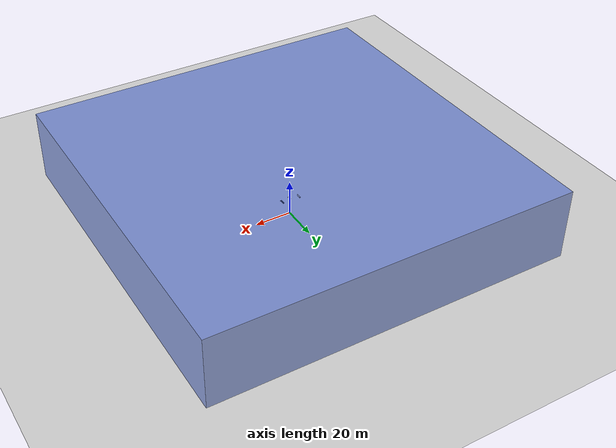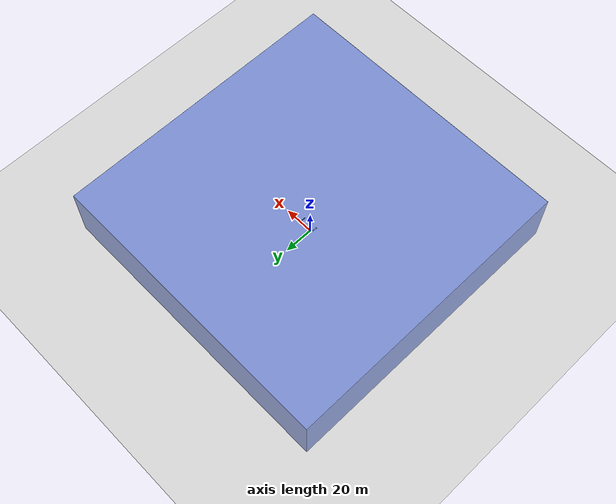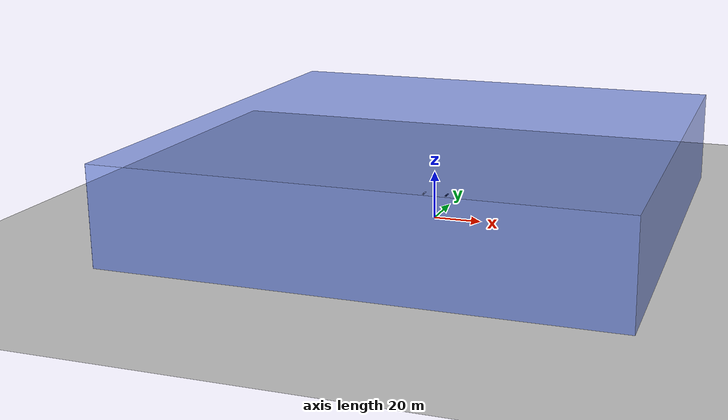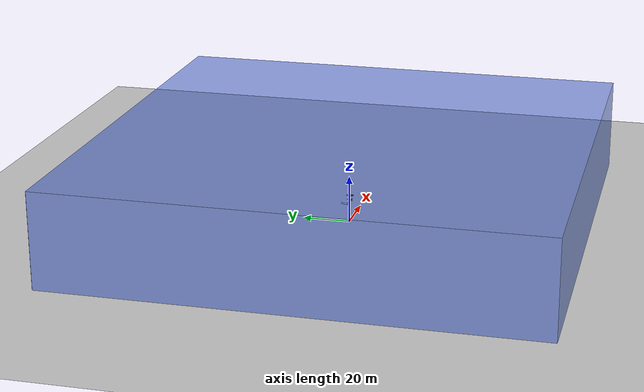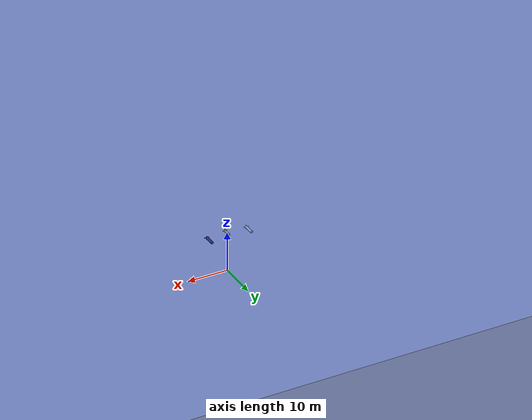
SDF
<sdf version="1.7">
 <world name="default">
  <scene>
   <ambient>0.25 0.3 0.5 1</ambient>
   <grid>0</grid>
   <background>0.7 0.7 0.7 1</background>
   <shadows>1</shadows>
  </scene>
  <light name="sun" type="directional">
   <pose>0 0 100 0 -0 0</pose>
   <diffuse>0.8 0.8 0.8 1</diffuse>
   <specular>0.2 0.2 0.2 1</specular>
   <attenuation>
    <range>1000</range>
    <constant>0.9</constant>
    <linear>0.01</linear>
    <quadratic>0.001</quadratic>
   </attenuation>
   <direction>-0.5 0.1 -0.9</direction>
   <spot><inner_angle>0</inner_angle><outer_angle>0</outer_angle><falloff>0</falloff></spot>
  </light>
  <model name="ground_plane">
   <static>1</static>
   <link name="link">
    <collision name="collision">
     <geometry><plane><normal>0 0 1</normal><size>200 200</size></plane></geometry>
     <surface>
      <contact><collide_bitmask>65535</collide_bitmask></contact>
      <friction><ode><mu>100</mu><mu2>50</mu2></ode></friction>
     </surface>
    </collision>
    <visual name="visual">
     <cast_shadows>0</cast_shadows>
     <geometry><plane><normal>0 0 1</normal><size>200 200</size></plane></geometry>
     <material>
      <script><uri>file://media/materials/scripts/gazebo.material</uri><name>Gazebo/Grey</name></script>
     </material>
    </visual>
   </link>
  </model>
  <model name="submarine_sinking">
   <pose>5 0 10 1.57 -0 0</pose>
   <link name="body">
    <pose>0 0 -1.07935 0 -0 0</pose>
    <inertial>
     <mass>1102.7</mass>
     <inertia><ixx>645.998</ixx><ixy>0</ixy><ixz>0</ixz><iyy>645.998</iyy><iyz>0</iyz><izz>49.6215</izz></inertia>
    </inertial>
    <visual name="body_visual">
     <geometry><cylinder><radius>0.3</radius><length>2.6</length></cylinder></geometry>
     <material>
      <script><uri>file://media/materials/scripts/gazebo.material</uri><name>Gazebo/Black</name></script>
     </material>
    </visual>
    <collision name="body_collision">
     <geometry><cylinder><radius>0.3</radius><length>2.6</length></cylinder></geometry>
    </collision>
    <visual name="spacer_visual">
     <pose>0 0 1.37855 0 -0 0</pose>
     <geometry><cylinder><radius>0.0933402</radius><length>0.127211</length></cylinder></geometry>
     <material>
      <script><uri>file://media/materials/scripts/gazebo.material</uri><name>Gazebo/Black</name></script>
     </material>
    </visual>
   </link>
   <link name="propeller">
    <pose>0 0 0.3455 3.14159 -0 0</pose>
    <inertial>
     <mass>25.2312</mass>
     <inertia><ixx>0.531907</ixx><ixy>0</ixy><ixz>0</ixz><iyy>0.531907</iyy><iyz>0</iyz><izz>1.0513</izz></inertia>
    </inertial>
    <visual name="blade1_visual">
     <pose>0.34334 0 0 0.785398 -0 0</pose>
     <geometry><box><size>0.5 0.154178 0.05455</size></box></geometry>
     <material>
      <script><uri>file://media/materials/scripts/gazebo.material</uri><name>Gazebo/Black</name></script>
     </material>
    </visual>
    <collision name="blade1_collision">
     <pose>0.34334 0 0 0.785398 -0 0</pose>
     <geometry><box><size>0.5 0.154178 0.05455</size></box></geometry>
    </collision>
    <visual name="blade2_visual">
     <pose>0 0.34334 0 0.785398 0 1.5708</pose>
     <geometry><box><size>0.5 0.154178 0.05455</size></box></geometry>
     <material>
      <script><uri>file://media/materials/scripts/gazebo.material</uri><name>Gazebo/Black</name></script>
     </material>
    </visual>
    <collision name="blade2_collision">
     <pose>0 0.34334 0 0.785398 0 1.5708</pose>
     <geometry><box><size>0.5 0.154178 0.05455</size></box></geometry>
    </collision>
    <visual name="blade3_visual">
     <pose>-0.34334 -0 0 -0.785398 0 0</pose>
     <geometry><box><size>0.5 0.154178 0.05455</size></box></geometry>
     <material>
      <script><uri>file://media/materials/scripts/gazebo.material</uri><name>Gazebo/Black</name></script>
     </material>
    </visual>
    <collision name="blade3_collision">
     <pose>-0.34334 -0 0 -0.785398 0 0</pose>
     <geometry><box><size>0.5 0.154178 0.05455</size></box></geometry>
    </collision>
    <visual name="blade4_visual">
     <pose>-0 -0.34334 0 -0.785398 -0 1.5708</pose>
     <geometry><box><size>0.5 0.154178 0.05455</size></box></geometry>
     <material>
      <script><uri>file://media/materials/scripts/gazebo.material</uri><name>Gazebo/Black</name></script>
     </material>
    </visual>
    <collision name="blade4_collision">
     <pose>-0 -0.34334 0 -0.785398 -0 1.5708</pose>
     <geometry><box><size>0.5 0.154178 0.05455</size></box></geometry>
    </collision>
   </link>
   <joint name="spinning_joint" type="revolute">
    <parent>body</parent>
    <child>propeller</child>
    <axis>
     <xyz expressed_in="__model__">0 0 1</xyz>
     <limit><lower>-1e+12</lower><upper>1e+12</upper><effort>-1</effort><velocity>-1</velocity></limit>
     <dynamics><spring_reference>0</spring_reference><spring_stiffness>0</spring_stiffness></dynamics>
    </axis>
   </joint>
   <plugin name="buoyancy" filename="libBuoyancyPlugin.so"><fluid_density>999.1026</fluid_density></plugin>
  </model>
  <model name="submarine">
   <pose>0 0 10 1.57 -0 0</pose>
   <link name="body">
    <inertial>
     <mass>251.327</mass>
     <inertia><ixx>86.2891</ixx><ixy>0</ixy><ixz>0</ixz><iyy>86.2891</iyy><iyz>0</iyz><izz>5.02655</izz></inertia>
    </inertial>
    <visual name="body_visual">
     <geometry><cylinder><radius>0.2</radius><length>2</length></cylinder></geometry>
     <material>
      <script><uri>file://media/materials/scripts/gazebo.material</uri><name>Gazebo/Yellow</name></script>
     </material>
    </visual>
    <collision name="body_collision">
     <geometry><cylinder><radius>0.2</radius><length>2</length></cylinder></geometry>
    </collision>
    <visual name="spacer_visual">
     <pose>0 0 1.05855 0 -0 0</pose>
     <geometry><cylinder><radius>0.0933402</radius><length>0.127211</length></cylinder></geometry>
     <material>
      <script><uri>file://media/materials/scripts/gazebo.material</uri><name>Gazebo/Yellow</name></script>
     </material>
    </visual>
    <enable_wind>1</enable_wind>
   </link>
   <link name="propeller">
    <pose>0 0 1.09 3.14159 -0 0</pose>
    <inertial>
     <mass>21.82</mass>
     <inertia>
      <ixx>0.459994</ixx>
      <ixy>0</ixy>
      <ixz>0</ixz>
      <iyy>0.459994</iyy>
      <iyz>0</iyz>
      <izz>0.909167</izz>
     </inertia>
    </inertial>
    <visual name="blade1_visual">
     <pose>0.34334 0 0 0.785398 -0 0</pose>
     <geometry><box><size>0.5 0.2 0.05455</size></box></geometry>
     <material>
      <script><uri>file://media/materials/scripts/gazebo.material</uri><name>Gazebo/Yellow</name></script>
     </material>
    </visual>
    <collision name="blade1_collision">
     <pose>0.34334 0 0 0.785398 -0 0</pose>
     <geometry><box><size>0.5 0.2 0.05455</size></box></geometry>
    </collision>
    <visual name="blade2_visual">
     <pose>0 0.34334 0 0.785398 0 1.5708</pose>
     <geometry><box><size>0.5 0.2 0.05455</size></box></geometry>
     <material>
      <script><uri>file://media/materials/scripts/gazebo.material</uri><name>Gazebo/Yellow</name></script>
     </material>
    </visual>
    <collision name="blade2_collision">
     <pose>0 0.34334 0 0.785398 0 1.5708</pose>
     <geometry><box><size>0.5 0.2 0.05455</size></box></geometry>
    </collision>
    <visual name="blade3_visual">
     <pose>-0.34334 -0 0 -0.785398 0 0</pose>
     <geometry><box><size>0.5 0.2 0.05455</size></box></geometry>
     <material>
      <script><uri>file://media/materials/scripts/gazebo.material</uri><name>Gazebo/Yellow</name></script>
     </material>
    </visual>
    <collision name="blade3_collision">
     <pose>-0.34334 -0 0 -0.785398 0 0</pose>
     <geometry><box><size>0.5 0.2 0.05455</size></box></geometry>
    </collision>
    <visual name="blade4_visual">
     <pose>-0 -0.34334 0 -0.785398 -0 1.5708</pose>
     <geometry><box><size>0.5 0.2 0.05455</size></box></geometry>
     <material>
      <script><uri>file://media/materials/scripts/gazebo.material</uri><name>Gazebo/Yellow</name></script>
     </material>
    </visual>
    <collision name="blade4_collision">
     <pose>-0 -0.34334 0 -0.785398 -0 1.5708</pose>
     <geometry><box><size>0.5 0.2 0.05455</size></box></geometry>
    </collision>
    <enable_wind>1</enable_wind>
   </link>
   <joint name="spinning_joint" type="revolute">
    <parent>body</parent>
    <child>propeller</child>
    <axis>
     <xyz expressed_in="__model__">0 0 1</xyz>
     <limit><lower>-1e+12</lower><upper>1e+12</upper><effort>-1</effort><velocity>-1</velocity></limit>
     <dynamics><spring_reference>0</spring_reference><spring_stiffness>0</spring_stiffness></dynamics>
    </axis>
   </joint>
   <plugin name="submarine_propeller_1" filename="libLiftDragPlugin.so">
    <air_density>1000</air_density>
    <cla>1.2535816618911175</cla>
    <cla_stall>-1.4326647564469914</cla_stall>
    <cda>0</cda>
    <cda_stall>1.4326647564469914</cda_stall>
    <alpha_stall>1.396</alpha_stall>
    <a0>0</a0>
    <area>0.27637</area>
    <upward>0 -0.7071067811865476 -0.7071067811865475</upward>
    <forward>0 -0.7071067811865475 0.7071067811865476</forward>
    <link_name>propeller</link_name>
    <cp>0.35 0 0</cp>
   </plugin>
   <plugin name="submarine_propeller_2" filename="libLiftDragPlugin.so">
    <air_density>1000</air_density>
    <cla>1.2535816618911175</cla>
    <cla_stall>-1.4326647564469914</cla_stall>
    <cda>0</cda>
    <cda_stall>1.4326647564469914</cda_stall>
    <alpha_stall>1.396</alpha_stall>
    <a0>0</a0>
    <area>0.27637</area>
    <upward>-0.7071067811865475 0 -0.7071067811865476</upward>
    <forward>-0.7071067811865476 0 0.7071067811865475</forward>
    <link_name>propeller</link_name>
    <cp>0 -0.35 0</cp>
   </plugin>
   <plugin name="submarine_propeller_3" filename="libLiftDragPlugin.so">
    <air_density>1000</air_density>
    <cla>1.2535816618911175</cla>
    <cla_stall>-1.4326647564469914</cla_stall>
    <cda>0</cda>
    <cda_stall>1.4326647564469914</cda_stall>
    <alpha_stall>1.396</alpha_stall>
    <a0>0</a0>
    <area>0.27637</area>
    <upward>0 0.7071067811865475 -0.7071067811865476</upward>
    <forward>0 -0.7071067811865476 -0.7071067811865475</forward>
    <link_name>propeller</link_name>
    <cp>-0.35 0 0</cp>
   </plugin>
   <plugin name="submarine_propeller_4" filename="libLiftDragPlugin.so">
    <air_density>1000</air_density>
    <cla>1.2535816618911175</cla>
    <cla_stall>-1.4326647564469914</cla_stall>
    <cda>0</cda>
    <cda_stall>1.4326647564469914</cda_stall>
    <alpha_stall>1.396</alpha_stall>
    <a0>0</a0>
    <area>0.27637</area>
    <upward>0.7071067811865476 0 -0.7071067811865475</upward>
    <forward>0.7071067811865475 0 0.7071067811865476</forward>
    <link_name>propeller</link_name>
    <cp>0 0.35 0</cp>
   </plugin>
   <plugin name="buoyancy" filename="libBuoyancyPlugin.so"><fluid_density>1000</fluid_density></plugin>
   <enable_wind>1</enable_wind>
  </model>
  <model name="submarine_buoyant">
   <pose>-5 0 10 1.57 -0 0</pose>
   <link name="body">
    <pose>0 0 -1.07935 0 -0 0</pose>
    <inertial>
     <mass>367.566</mass>
     <inertia><ixx>215.333</ixx><ixy>0</ixy><ixz>0</ixz><iyy>215.333</iyy><iyz>0</iyz><izz>16.5405</izz></inertia>
    </inertial>
    <visual name="body_visual">
     <geometry><cylinder><radius>0.3</radius><length>2.6</length></cylinder></geometry>
     <material>
      <script><uri>file://media/materials/scripts/gazebo.material</uri><name>Gazebo/White</name></script>
     </material>
    </visual>
    <collision name="body_collision">
     <geometry><cylinder><radius>0.3</radius><length>2.6</length></cylinder></geometry>
    </collision>
    <visual name="spacer_visual">
     <pose>0 0 1.37855 0 -0 0</pose>
     <geometry><cylinder><radius>0.0933402</radius><length>0.127211</length></cylinder></geometry>
     <material>
      <script><uri>file://media/materials/scripts/gazebo.material</uri><name>Gazebo/White</name></script>
     </material>
    </visual>
   </link>
   <link name="propeller">
    <pose>0 0 0.3455 3.14159 -0 0</pose>
    <inertial>
     <mass>8.41041</mass>
     <inertia>
      <ixx>0.177302</ixx>
      <ixy>0</ixy>
      <ixz>0</ixz>
      <iyy>0.177302</iyy>
      <iyz>0</iyz>
      <izz>0.350434</izz>
     </inertia>
    </inertial>
    <visual name="blade1_visual">
     <pose>0.34334 0 0 0.785398 -0 0</pose>
     <geometry><box><size>0.5 0.154178 0.05455</size></box></geometry>
     <material>
      <script><uri>file://media/materials/scripts/gazebo.material</uri><name>Gazebo/White</name></script>
     </material>
    </visual>
    <collision name="blade1_collision">
     <pose>0.34334 0 0 0.785398 -0 0</pose>
     <geometry><box><size>0.5 0.154178 0.05455</size></box></geometry>
    </collision>
    <visual name="blade2_visual">
     <pose>0 0.34334 0 0.785398 0 1.5708</pose>
     <geometry><box><size>0.5 0.154178 0.05455</size></box></geometry>
     <material>
      <script><uri>file://media/materials/scripts/gazebo.material</uri><name>Gazebo/White</name></script>
     </material>
    </visual>
    <collision name="blade2_collision">
     <pose>0 0.34334 0 0.785398 0 1.5708</pose>
     <geometry><box><size>0.5 0.154178 0.05455</size></box></geometry>
    </collision>
    <visual name="blade3_visual">
     <pose>-0.34334 -0 0 -0.785398 0 0</pose>
     <geometry><box><size>0.5 0.154178 0.05455</size></box></geometry>
     <material>
      <script><uri>file://media/materials/scripts/gazebo.material</uri><name>Gazebo/White</name></script>
     </material>
    </visual>
    <collision name="blade3_collision">
     <pose>-0.34334 -0 0 -0.785398 0 0</pose>
     <geometry><box><size>0.5 0.154178 0.05455</size></box></geometry>
    </collision>
    <visual name="blade4_visual">
     <pose>-0 -0.34334 0 -0.785398 -0 1.5708</pose>
     <geometry><box><size>0.5 0.154178 0.05455</size></box></geometry>
     <material>
      <script><uri>file://media/materials/scripts/gazebo.material</uri><name>Gazebo/White</name></script>
     </material>
    </visual>
    <collision name="blade4_collision">
     <pose>-0 -0.34334 0 -0.785398 -0 1.5708</pose>
     <geometry><box><size>0.5 0.154178 0.05455</size></box></geometry>
    </collision>
   </link>
   <joint name="spinning_joint" type="revolute">
    <parent>body</parent>
    <child>propeller</child>
    <axis>
     <xyz expressed_in="__model__">0 0 1</xyz>
     <limit><lower>-1e+12</lower><upper>1e+12</upper><effort>-1</effort><velocity>-1</velocity></limit>
     <dynamics><spring_reference>0</spring_reference><spring_stiffness>0</spring_stiffness></dynamics>
    </axis>
   </joint>
   <plugin name="buoyancy" filename="libBuoyancyPlugin.so"><fluid_density>999.1026</fluid_density></plugin>
  </model>
  <model name="ceiling_plane">
   <static>1</static>
   <pose>0 0 40 0 -0 0</pose>
   <link name="link">
    <collision name="collision"><geometry><box><size>200 200 0.1</size></box></geometry></collision>
    <visual name="visual">
     <cast_shadows>0</cast_shadows>
     <geometry><box><size>200 200 0.1</size></box></geometry>
     <material>
      <script><uri>file://media/materials/scripts/gazebo.material</uri><name>Gazebo/BlueTransparent</name></script>
     </material>
    </visual>
    <visual name="visual_sideA">
     <pose>100.05 0 -20 0 -0 0</pose>
     <cast_shadows>0</cast_shadows>
     <geometry><box><size>0.1 200 39.9</size></box></geometry>
     <material>
      <script><uri>file://media/materials/scripts/gazebo.material</uri><name>Gazebo/BlueTransparent</name></script>
     </material>
    </visual>
    <visual name="visual_sideB">
     <pose>-100.05 0 -20 0 -0 0</pose>
     <cast_shadows>0</cast_shadows>
     <geometry><box><size>0.1 200 39.9</size></box></geometry>
     <material>
      <script><uri>file://media/materials/scripts/gazebo.material</uri><name>Gazebo/BlueTransparent</name></script>
     </material>
    </visual>
    <visual name="visual_sideC">
     <pose>0 100.05 -20 0 -0 0</pose>
     <cast_shadows>0</cast_shadows>
     <geometry><box><size>200 0.1 39.9</size></box></geometry>
     <material>
      <script><uri>file://media/materials/scripts/gazebo.material</uri><name>Gazebo/BlueTransparent</name></script>
     </material>
    </visual>
    <visual name="visual_sideD">
     <pose>0 -100.05 -20 0 -0 0</pose>
     <cast_shadows>0</cast_shadows>
     <geometry><box><size>200 0.1 39.9</size></box></geometry>
     <material>
      <script><uri>file://media/materials/scripts/gazebo.material</uri><name>Gazebo/BlueTransparent</name></script>
     </material>
    </visual>
   </link>
  </model>
  <gravity>0 0 -9.8</gravity>
  <magnetic_field>6e-06 2.3e-05 -4.2e-05</magnetic_field>
  <atmosphere type="adiabatic"/>
  <physics type="ode">
   <max_step_size>0.001</max_step_size>
   <real_time_factor>1</real_time_factor>
   <real_time_update_rate>1000</real_time_update_rate>
  </physics>
  <spherical_coordinates>
   <surface_model>EARTH_WGS84</surface_model>
   <latitude_deg>0</latitude_deg>
   <longitude_deg>0</longitude_deg>
   <elevation>0</elevation>
   <heading_deg>0</heading_deg>
  </spherical_coordinates>
 </world>
</sdf>
